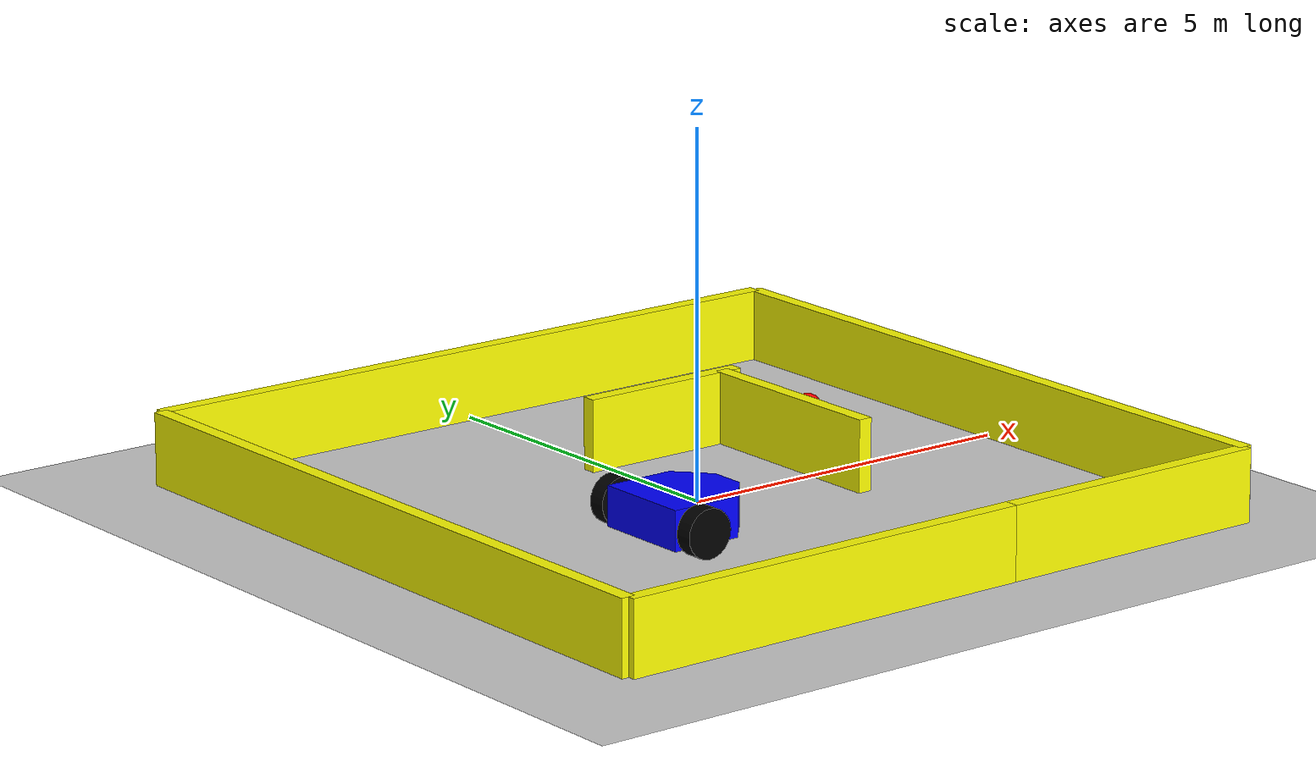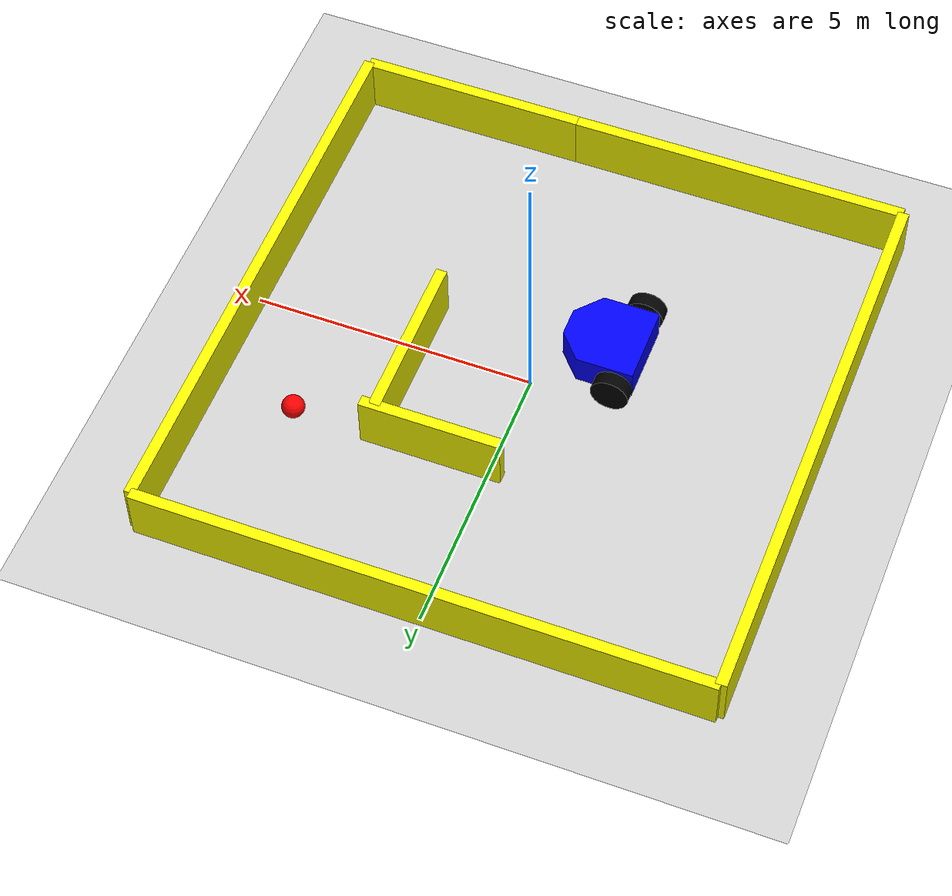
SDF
<?xml version="1.0" ?>
<sdf version="1.8">
    <world name="car_world">
        <physics name="1ms" type="ode">
            <max_step_size>0.001</max_step_size>
            <real_time_factor>1.0</real_time_factor>
        </physics>

        <!-- Add the sensors system plugin here -->
        <plugin
            filename="ignition-gazebo6-sensors-system"
            name="ignition::gazebo::systems::Sensors">
            <render_engine>ogre2</render_engine>
        </plugin>

        <plugin
            filename="ignition-gazebo6-physics-system"
            name="ignition::gazebo::systems::Physics">
        </plugin>
        <plugin
            filename="ignition-gazebo6-user-commands-system"
            name="ignition::gazebo::systems::UserCommands">
        </plugin>
        <plugin
            filename="ignition-gazebo6-scene-broadcaster-system"
            name="ignition::gazebo::systems::SceneBroadcaster">
        </plugin>
        <plugin
            filename="ignition-gazebo6-imu-system"
            name="ignition::gazebo::systems::Imu">
        </plugin>

        <light type="directional" name="sun">
            <cast_shadows>true</cast_shadows>
            <pose>0 0 10 0 0 0</pose>
            <diffuse>0.8 0.8 0.8 1</diffuse>
            <specular>0.2 0.2 0.2 1</specular>
            <attenuation>
                <range>1000</range>
                <constant>0.9</constant>
                <linear>0.01</linear>
                <quadratic>0.001</quadratic>
            </attenuation>
            <direction>-0.0 0.1 -0.9</direction>
        </light>

        <model name="ground_plane">
            <static>true</static>
            <link name="link">
                <collision name="collision">
                    <geometry>
                        <plane>
                            <normal>0 0 1</normal>
                            <size>100 100</size>
                        </plane>
                    </geometry>
                </collision>
                <visual name="visual">
                    <geometry>
                        <plane>
                            <normal>0 0 1</normal>
                            <size>100 100</size>
                        </plane>
                    </geometry>
                    <material>
                        <ambient>0.8 0.8 0.8 1</ambient>
                        <diffuse>0.8 0.8 0.8 1</diffuse>
                        <specular>0.8 0.8 0.8 1</specular>
                    </material>
                </visual>
            </link>
        </model>

        <!-- Fixed camera model -->
        <model name="top_view_camera">
            <static>true</static>
            <pose>0 0 8 0 1.5708 0</pose>
            <link name="camera_link">
                <sensor name="rgb_camera" type="camera">
                    <always_on>1</always_on>
                    <update_rate>30</update_rate>
                    <visualize>true</visualize>
                    <topic>/camera/image_raw</topic>
                    <camera>
                        <horizontal_fov>1.5708</horizontal_fov>
                        <image>
                            <width>640</width>
                            <height>480</height>
                            <format>R8G8B8</format>
                        </image>
                        <clip>
                            <near>0.1</near>
                            <far>15.0</far>
                        </clip>
                    </camera>
                </sensor>
            </link>
        </model>

        <!-- Enhanced target with bright red color -->
        <model name="target">
            <pose>3.5 2 0.2 0 0 0</pose>
            <link name="target_link">
                <collision name="collision">
                    <geometry>
                        <sphere>
                            <radius>0.2</radius>
                        </sphere>
                    </geometry>
                </collision>
                <visual name="visual">
                    <geometry>
                        <sphere>
                            <radius>0.2</radius>
                        </sphere>
                    </geometry>
                    <material>
                        <ambient>1 0 0 1</ambient>
                        <diffuse>1 0 0 1</diffuse>
                        <specular>1 0 0 1</specular>
                        <emissive>0.2 0 0 1</emissive>
                    </material>
                </visual>
            </link>
        </model>

        <!-- Labyrinth with distinct colors for better detection -->
        <model name="labyrinth">
            <static>true</static>
            <pose>0 0 0 0 0 0</pose>
            <link name="labyrinth_link">
                <collision name="wall1_collision">
                    <pose>-5 0 0.5 0 0 0</pose>
                    <geometry>
                        <box>
                            <size>0.2 10 1</size>
                        </box>
                    </geometry>
                </collision>
                <visual name="wall1_visual">
                    <pose>-5 0 0.5 0 0 0</pose>
                    <geometry>
                        <box>
                            <size>0.2 10 1</size>
                        </box>
                    </geometry>
                    <material>
                        <ambient>1 1 0 1</ambient>
                        <diffuse>1 1 0 1</diffuse>
                    </material>
                </visual>
                <collision name="wall2_collision">
                    <pose>5 0 0.5 0 0 0</pose>
                    <geometry>
                        <box>
                            <size>0.2 10 1</size>
                        </box>
                    </geometry>
                </collision>
                <visual name="wall2_visual">
                    <pose>5 0 0.5 0 0 0</pose>
                    <geometry>
                        <box>
                            <size>0.2 10 1</size>
                        </box>
                    </geometry>
                    <material>
                        <ambient>1 1 0 1</ambient>
                        <diffuse>1 1 0 1</diffuse>
                    </material>
                </visual>
                <collision name="wall3_collision">
                    <pose>0 5 0.5 0 0 1.5708</pose>
                    <geometry>
                        <box>
                            <size>0.2 10 1</size>
                        </box>
                    </geometry>
                </collision>
                <visual name="wall3_visual">
                    <pose>0 5 0.5 0 0 1.5708</pose>
                    <geometry>
                        <box>
                            <size>0.2 10 1</size>
                        </box>
                    </geometry>
                    <material>
                        <ambient>1 1 0 1</ambient>
                        <diffuse>1 1 0 1</diffuse>
                    </material>
                </visual>
                <collision name="wall4a_collision">
                    <pose>-2 -5 0.5 0 0 1.5708</pose>
                    <geometry>
                        <box>
                            <size>0.2 6 1</size>
                        </box>
                    </geometry>
                </collision>
                <visual name="wall4a_visual">
                    <pose>-2 -5 0.5 0 0 1.5708</pose>
                    <geometry>
                        <box>
                            <size>0.2 6 1</size>
                        </box>
                    </geometry>
                    <material>
                        <ambient>1 1 0 1</ambient>
                        <diffuse>1 1 0 1</diffuse>
                    </material>
                </visual>
                <collision name="wall4b_collision">
                    <pose>3 -5 0.5 0 0 1.5708</pose>
                    <geometry>
                        <box>
                            <size>0.2 4 1</size>
                        </box>
                    </geometry>
                </collision>
                <visual name="wall4b_visual">
                    <pose>3 -5 0.5 0 0 1.5708</pose>
                    <geometry>
                        <box>
                            <size>0.2 4 1</size>
                        </box>
                    </geometry>
                    <material>
                        <ambient>1 1 0 1</ambient>
                        <diffuse>1 1 0 1</diffuse>
                    </material>
                </visual>
                <collision name="wall5_collision">
                    <pose>2 0.5 0.5 0 0 0</pose>
                    <geometry>
                        <box>
                            <size>0.2 3 1</size>
                        </box>
                    </geometry>
                </collision>
                <visual name="wall5_visual">
                    <pose>2 0.5 0.5 0 0 0</pose>
                    <geometry>
                        <box>
                            <size>0.2 3 1</size>
                        </box>
                    </geometry>
                    <material>
                        <ambient>1 1 0 1</ambient>
                        <diffuse>1 1 0 1</diffuse>
                    </material>
                </visual>
                <collision name="wall6_collision">
                    <pose>1 2 0.5 0 0 1.5708</pose>
                    <geometry>
                        <box>
                            <size>0.2 2.5 1</size>
                        </box>
                    </geometry>
                </collision>
                <visual name="wall6_visual">
                    <pose>1 2 0.5 0 0 1.5708</pose>
                    <geometry>
                        <box>
                            <size>0.2 2.5 1</size>
                        </box>
                    </geometry>
                    <material>
                        <ambient>1 1 0 1</ambient>
                        <diffuse>1 1 0 1</diffuse>
                    </material>
                </visual>
            </link>
        </model>

        <!-- Your vehicle model (unchanged) -->
        <model name="vehicle_blue" canonical_link="chassis">
            <pose relative_to="world">0 0 0 0 0 0</pose>
            <link name="chassis">
                <pose relative_to="__model__">-1 -1 0.335 0 0 0</pose>
                <inertial>
                    <mass>1.14395</mass>
                    <inertia>
                        <ixx>0.095329</ixx>
                        <ixy>0</ixy>
                        <ixz>0</ixz>
                        <iyy>0.381317</iyy>
                        <iyz>0</iyz>
                        <izz>0.476646</izz>
                    </inertia>
                </inertial>
                <visual name="visual">
                    <pose>0.7 0.7 -0.26 1.5707 0 -1.5707</pose>
                    <geometry>
                        <mesh>
                            <uri>file:///home/aldon/ros2_ws/src/my_robot/MySDF/ROBOT.STL</uri>
                            <scale>0.01 0.01 0.01</scale>
                        </mesh>
                    </geometry>
                    <material>
                        <ambient>0.0 0.0 1.0 1</ambient>
                        <diffuse>0.0 0.0 1.0 1</diffuse>
                        <specular>0.0 0.0 1.0 1</specular>
                    </material>
                </visual>
                <collision name="collision">
                    <pose>0.7 0.7 -0.26 1.5707 0 -1.5707</pose>
                    <geometry>
                        <mesh>
                            <uri>file:///home/aldon/ros2_ws/src/my_robot/MySDF/ROBOT.STL</uri>
                            <scale>0.01 0.01 0.01</scale>
                        </mesh>
                    </geometry>
                </collision>
                <sensor name="imu_sensor" type="imu">
                    <always_on>true</always_on>
                    <update_rate>100</update_rate>
                    <topic>/imu</topic>
                    <visualize>true</visualize>
                </sensor>
            </link>
            <link name="left_wheel">
                <pose relative_to="chassis">-0.4 0.895 0 1.5707 0 0</pose>
                <inertial>
                    <mass>1</mass>
                    <inertia>
                        <ixx>0.043333</ixx>
                        <ixy>0</ixy>
                        <ixz>0</ixz>
                        <iyy>0.043333</iyy>
                        <iyz>0</iyz>
                        <izz>0.08</izz>
                    </inertia>
                </inertial>
                <visual name="visual">
                    <geometry>
                        <cylinder>
                            <radius>0.335</radius>
                            <length>0.25</length>
                        </cylinder>
                    </geometry>
                    <material>
                        <ambient>0.0 0.0 0.0 1.0</ambient>
                        <diffuse>0.0 0.0 0.0 1.0</diffuse>
                        <specular>0.0 0.0 0.0 1.0</specular>
                    </material>
                </visual>
                <collision name="collision">
                    <geometry>
                        <cylinder>
                            <radius>0.335</radius>
                            <length>0.25</length>
                        </cylinder>
                    </geometry>
                </collision>
            </link>
            <link name="right_wheel">
                <pose relative_to="chassis">-0.4 -0.895 0 1.5707 0 0</pose>
                <inertial>
                    <mass>1</mass>
                    <inertia>
                        <ixx>0.043333</ixx>
                        <ixy>0</ixy>
                        <ixz>0</ixz>
                        <iyy>0.043333</iyy>
                        <iyz>0</iyz>
                        <izz>0.08</izz>
                    </inertia>
                </inertial>
                <visual name="visual">
                    <geometry>
                        <cylinder>
                            <radius>0.335</radius>
                            <length>0.25</length>
                        </cylinder>
                    </geometry>
                    <material>
                        <ambient>0.0 0.0 0.0 1.0</ambient>
                        <diffuse>0.0 0.0 0.0 1.0</diffuse>
                        <specular>0.0 0.0 0.0 1.0</specular>
                    </material>
                </visual>
                <collision name="collision">
                    <geometry>
                        <cylinder>
                            <radius>0.335</radius>
                            <length>0.25</length>
                        </cylinder>
                    </geometry>
                </collision>
            </link>
            <frame name="caster_frame">
                <pose relative_to="chassis">0.6 0 -0.29 0 0 0</pose>
            </frame>
            <link name="caster">
                <pose relative_to="caster_frame">0 0 0 0 0 0</pose>
                <inertial>
                    <mass>1</mass>
                    <inertia>
                        <ixx>0.016</ixx>
                        <ixy>0</ixy>
                        <ixz>0</ixz>
                        <iyy>0.016</iyy>
                        <iyz>0</iyz>
                        <izz>0.016</izz>
                    </inertia>
                </inertial>
                <visual name="visual">
                    <geometry>
                        <sphere>
                            <radius>0.045</radius>
                        </sphere>
                    </geometry>
                    <material>
                        <ambient>0.0 1 0.0 1</ambient>
                        <diffuse>0.0 1 0.0 1</diffuse>
                        <specular>0.0 1 0.0 1</specular>
                    </material>
                </visual>
                <collision name="collision">
                    <geometry>
                        <sphere>
                            <radius>0.2</radius>
                        </sphere>
                    </geometry>
                </collision>
            </link>
            <joint name="left_wheel_joint" type="revolute">
                <pose relative_to="left_wheel">0 0 0 0 0 0</pose>
                <parent>chassis</parent>
                <child>left_wheel</child>
                <axis>
                    <xyz expressed_in="__model__">0 1 0</xyz>
                    <limit>
                        <lower>-1.79769e+308</lower>
                        <upper>1.79769e+308</upper>
                    </limit>
                </axis>
            </joint>
            <joint name="right_wheel_joint" type="revolute">
                <pose relative_to="right_wheel">0 0 0 0 0 0</pose>
                <parent>chassis</parent>
                <child>right_wheel</child>
                <axis>
                    <xyz expressed_in="__model__">0 1 0</xyz>
                    <limit>
                        <lower>-1.79769e+308</lower>
                        <upper>1.79769e+308</upper>
                    </limit>
                </axis>
            </joint>
            <joint name="caster_wheel" type="ball">
                <parent>chassis</parent>
                <child>caster</child>
            </joint>
            <plugin
                filename="ignition-gazebo6-diff-drive-system"
                name="ignition::gazebo::systems::DiffDrive">
                <left_joint>left_wheel_joint</left_joint>
                <right_joint>right_wheel_joint</right_joint>
                <wheel_separation>1.54</wheel_separation>
                <wheel_radius>0.35</wheel_radius>
                <odom_publish_frequency>1</odom_publish_frequency>
                <topic>/cmd_vel</topic>
            </plugin>
            <!-- Moving Backward -->
            <plugin
                filename="ignition-gazebo6-triggered-publisher-system"
                name="ignition::gazebo::systems::TriggeredPublisher">
                <input type="ignition.msgs.Int32" topic="/keyboard/keypress">
                    <match field="data">16777237</match>
                </input>
                <output type="ignition.msgs.Twist" topic="/cmd_vel">
                    linear: {x: -0.5}, angular: {z: 0.0}
                </output>
            </plugin>
            <!-- Moving Left -->
            <plugin
                filename="ignition-gazebo6-triggered-publisher-system"
                name="ignition::gazebo::systems::TriggeredPublisher">
                <input type="ignition.msgs.Int32" topic="/keyboard/keypress">
                    <match field="data">16777234</match>
                </input>
                <output type="ignition.msgs.Twist" topic="/cmd_vel">
                    linear: {x: 0.0}, angular: {z: 0.5}
                </output>
            </plugin>
            <!-- Moving Up -->
            <plugin
                filename="ignition-gazebo6-triggered-publisher-system"
                name="ignition::gazebo::systems::TriggeredPublisher">
                <input type="ignition.msgs.Int32" topic="/keyboard/keypress">
                    <match field="data">16777235</match>
                </input>
                <output type="ignition.msgs.Twist" topic="/cmd_vel">
                    linear: {x: 0.5}, angular: {z: 0.0}
                </output>
            </plugin>
            <!-- Moving Right -->
            <plugin
                filename="ignition-gazebo6-triggered-publisher-system"
                name="ignition::gazebo::systems::TriggeredPublisher">
                <input type="ignition.msgs.Int32" topic="/keyboard/keypress">
                    <match field="data">16777236</match>
                </input>
                <output type="ignition.msgs.Twist" topic="/cmd_vel">
                    linear: {x: 0.0}, angular: {z: -0.5}
                </output>
            </plugin>
        </model>
    </world>
</sdf>
